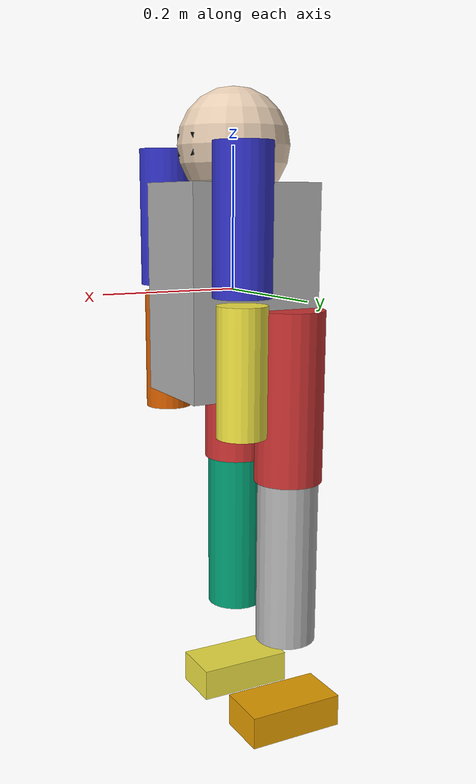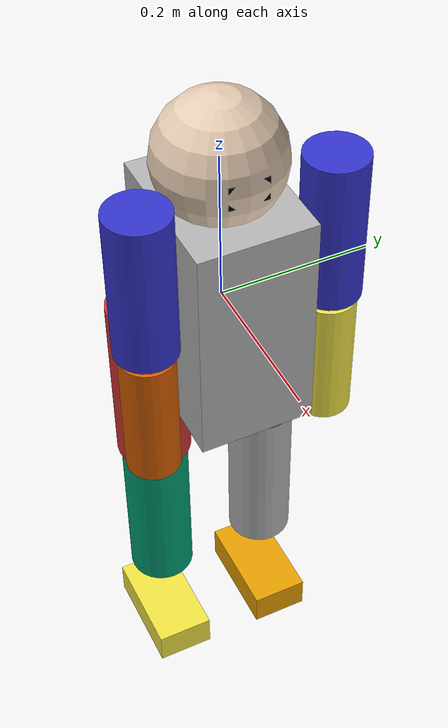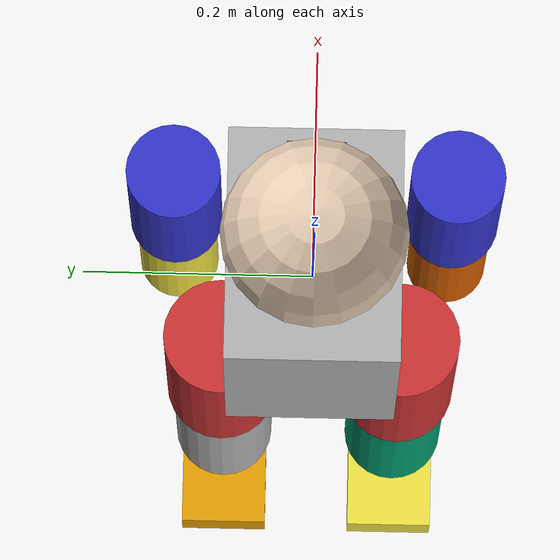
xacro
<?xml version="1.0"?>
<robot xmlns:xacro="http://www.ros.org/wiki/xacro" name="textbook_humanoid">
  <xacro:property name="M_PI" value="3.1415926535897931" />

  <!-- Base link (torso) -->
  <link name="base_link">
    <visual>
      <geometry>
        <box size="0.2 0.15 0.3"/>
      </geometry>
      <material name="light_gray">
        <color rgba="0.7 0.7 0.7 1.0"/>
      </material>
    </visual>
    <collision>
      <geometry>
        <box size="0.2 0.15 0.3"/>
      </geometry>
    </collision>
    <inertial>
      <mass value="10.0"/>
      <inertia ixx="0.2" ixy="0" ixz="0" iyy="0.3" iyz="0" izz="0.2"/>
    </inertial>
  </link>

  <!-- Head -->
  <joint name="neck_joint" type="revolute">
    <parent link="base_link"/>
    <child link="head_link"/>
    <origin xyz="0 0 0.2" rpy="0 0 0"/>
    <axis xyz="0 1 0"/>
    <limit lower="${-M_PI/3}" upper="${M_PI/3}" effort="5.0" velocity="2.0"/>
  </joint>

  <link name="head_link">
    <visual>
      <geometry>
        <sphere radius="0.08"/>
      </geometry>
      <material name="skin_color">
        <color rgba="0.9 0.8 0.7 1.0"/>
      </material>
    </visual>
    <collision>
      <geometry>
        <sphere radius="0.08"/>
      </geometry>
    </collision>
    <inertial>
      <mass value="2.0"/>
      <inertia ixx="0.01" ixy="0" ixz="0" iyy="0.01" iyz="0" izz="0.01"/>
    </inertial>
  </link>

  <!-- Left Arm -->
  <joint name="left_shoulder_joint" type="revolute">
    <parent link="base_link"/>
    <child link="left_upper_arm"/>
    <origin xyz="0.05 0.12 0.1" rpy="0 0 0"/>
    <axis xyz="0 1 0"/>
    <limit lower="${-M_PI/2}" upper="${M_PI/2}" effort="10.0" velocity="2.0"/>
  </joint>

  <link name="left_upper_arm">
    <visual>
      <geometry>
        <cylinder length="0.2" radius="0.04"/>
      </geometry>
      <material name="blue">
        <color rgba="0.2 0.2 0.8 1.0"/>
      </material>
    </visual>
    <collision>
      <geometry>
        <cylinder length="0.2" radius="0.04"/>
      </geometry>
    </collision>
    <inertial>
      <mass value="1.5"/>
      <inertia ixx="0.005" ixy="0" ixz="0" iyy="0.005" iyz="0" izz="0.0002"/>
    </inertial>
  </link>

  <joint name="left_elbow_joint" type="revolute">
    <parent link="left_upper_arm"/>
    <child link="left_lower_arm"/>
    <origin xyz="0 0 -0.2" rpy="0 0 0"/>
    <axis xyz="1 0 0"/>
    <limit lower="${-M_PI/2}" upper="${M_PI/2}" effort="8.0" velocity="2.0"/>
  </joint>

  <link name="left_lower_arm">
    <visual>
      <geometry>
        <cylinder length="0.18" radius="0.035"/>
      </geometry>
    </visual>
    <collision>
      <geometry>
        <cylinder length="0.18" radius="0.035"/>
      </geometry>
    </collision>
    <inertial>
      <mass value="1.0"/>
      <inertia ixx="0.003" ixy="0" ixz="0" iyy="0.003" iyz="0" izz="0.0001"/>
    </inertial>
  </link>

  <!-- Right Arm -->
  <joint name="right_shoulder_joint" type="revolute">
    <parent link="base_link"/>
    <child link="right_upper_arm"/>
    <origin xyz="0.05 -0.12 0.1" rpy="0 0 0"/>
    <axis xyz="0 1 0"/>
    <limit lower="${-M_PI/2}" upper="${M_PI/2}" effort="10.0" velocity="2.0"/>
  </joint>

  <link name="right_upper_arm">
    <visual>
      <geometry>
        <cylinder length="0.2" radius="0.04"/>
      </geometry>
      <material name="blue">
        <color rgba="0.2 0.2 0.8 1.0"/>
      </material>
    </visual>
    <collision>
      <geometry>
        <cylinder length="0.2" radius="0.04"/>
      </geometry>
    </collision>
    <inertial>
      <mass value="1.5"/>
      <inertia ixx="0.005" ixy="0" ixz="0" iyy="0.005" iyz="0" izz="0.0002"/>
    </inertial>
  </link>

  <joint name="right_elbow_joint" type="revolute">
    <parent link="right_upper_arm"/>
    <child link="right_lower_arm"/>
    <origin xyz="0 0 -0.2" rpy="0 0 0"/>
    <axis xyz="1 0 0"/>
    <limit lower="${-M_PI/2}" upper="${M_PI/2}" effort="8.0" velocity="2.0"/>
  </joint>

  <link name="right_lower_arm">
    <visual>
      <geometry>
        <cylinder length="0.18" radius="0.035"/>
      </geometry>
    </visual>
    <collision>
      <geometry>
        <cylinder length="0.18" radius="0.035"/>
      </geometry>
    </collision>
    <inertial>
      <mass value="1.0"/>
      <inertia ixx="0.003" ixy="0" ixz="0" iyy="0.003" iyz="0" izz="0.0001"/>
    </inertial>
  </link>

  <!-- Left Leg -->
  <joint name="left_hip_joint" type="revolute">
    <parent link="base_link"/>
    <child link="left_upper_leg"/>
    <origin xyz="-0.05 0.08 -0.15" rpy="0 0 0"/>
    <axis xyz="0 1 0"/>
    <limit lower="${-M_PI/3}" upper="${M_PI/3}" effort="15.0" velocity="1.5"/>
  </joint>

  <link name="left_upper_leg">
    <visual>
      <geometry>
        <cylinder length="0.25" radius="0.05"/>
      </geometry>
      <material name="red">
        <color rgba="0.8 0.2 0.2 1.0"/>
      </material>
    </visual>
    <collision>
      <geometry>
        <cylinder length="0.25" radius="0.05"/>
      </geometry>
    </collision>
    <inertial>
      <mass value="2.0"/>
      <inertia ixx="0.01" ixy="0" ixz="0" iyy="0.01" iyz="0" izz="0.0003"/>
    </inertial>
  </link>

  <joint name="left_knee_joint" type="revolute">
    <parent link="left_upper_leg"/>
    <child link="left_lower_leg"/>
    <origin xyz="0 0 -0.25" rpy="0 0 0"/>
    <axis xyz="1 0 0"/>
    <limit lower="0" upper="${M_PI/2}" effort="15.0" velocity="1.5"/>
  </joint>

  <link name="left_lower_leg">
    <visual>
      <geometry>
        <cylinder length="0.25" radius="0.045"/>
      </geometry>
    </visual>
    <collision>
      <geometry>
        <cylinder length="0.25" radius="0.045"/>
      </geometry>
    </collision>
    <inertial>
      <mass value="1.8"/>
      <inertia ixx="0.008" ixy="0" ixz="0" iyy="0.008" iyz="0" izz="0.0003"/>
    </inertial>
  </link>

  <joint name="left_ankle_joint" type="revolute">
    <parent link="left_lower_leg"/>
    <child link="left_foot"/>
    <origin xyz="0 0 -0.25" rpy="0 0 0"/>
    <axis xyz="0 1 0"/>
    <limit lower="${-M_PI/6}" upper="${M_PI/6}" effort="8.0" velocity="1.0"/>
  </joint>

  <link name="left_foot">
    <visual>
      <geometry>
        <box size="0.15 0.08 0.05"/>
      </geometry>
    </visual>
    <collision>
      <geometry>
        <box size="0.15 0.08 0.05"/>
      </geometry>
    </collision>
    <inertial>
      <mass value="0.8"/>
      <inertia ixx="0.001" ixy="0" ixz="0" iyy="0.002" iyz="0" izz="0.002"/>
    </inertial>
  </link>

  <!-- Right Leg -->
  <joint name="right_hip_joint" type="revolute">
    <parent link="base_link"/>
    <child link="right_upper_leg"/>
    <origin xyz="-0.05 -0.08 -0.15" rpy="0 0 0"/>
    <axis xyz="0 1 0"/>
    <limit lower="${-M_PI/3}" upper="${M_PI/3}" effort="15.0" velocity="1.5"/>
  </joint>

  <link name="right_upper_leg">
    <visual>
      <geometry>
        <cylinder length="0.25" radius="0.05"/>
      </geometry>
      <material name="red">
        <color rgba="0.8 0.2 0.2 1.0"/>
      </material>
    </visual>
    <collision>
      <geometry>
        <cylinder length="0.25" radius="0.05"/>
      </geometry>
    </collision>
    <inertial>
      <mass value="2.0"/>
      <inertia ixx="0.01" ixy="0" ixz="0" iyy="0.01" iyz="0" izz="0.0003"/>
    </inertial>
  </link>

  <joint name="right_knee_joint" type="revolute">
    <parent link="right_upper_leg"/>
    <child link="right_lower_leg"/>
    <origin xyz="0 0 -0.25" rpy="0 0 0"/>
    <axis xyz="1 0 0"/>
    <limit lower="0" upper="${M_PI/2}" effort="15.0" velocity="1.5"/>
  </joint>

  <link name="right_lower_leg">
    <visual>
      <geometry>
        <cylinder length="0.25" radius="0.045"/>
      </geometry>
    </visual>
    <collision>
      <geometry>
        <cylinder length="0.25" radius="0.045"/>
      </geometry>
    </collision>
    <inertial>
      <mass value="1.8"/>
      <inertia ixx="0.008" ixy="0" ixz="0" iyy="0.008" iyz="0" izz="0.0003"/>
    </inertial>
  </link>

  <joint name="right_ankle_joint" type="revolute">
    <parent link="right_lower_leg"/>
    <child link="right_foot"/>
    <origin xyz="0 0 -0.25" rpy="0 0 0"/>
    <axis xyz="0 1 0"/>
    <limit lower="${-M_PI/6}" upper="${M_PI/6}" effort="8.0" velocity="1.0"/>
  </joint>

  <link name="right_foot">
    <visual>
      <geometry>
        <box size="0.15 0.08 0.05"/>
      </geometry>
    </visual>
    <collision>
      <geometry>
        <box size="0.15 0.08 0.05"/>
      </geometry>
    </collision>
    <inertial>
      <mass value="0.8"/>
      <inertia ixx="0.001" ixy="0" ixz="0" iyy="0.002" iyz="0" izz="0.002"/>
    </inertial>
  </link>

  <!-- Sensors -->
  <joint name="camera_joint" type="fixed">
    <parent link="head_link"/>
    <child link="camera_link"/>
    <origin xyz="0.05 0 0" rpy="0 0 0"/>
  </joint>

  <link name="camera_link">
    <visual>
      <geometry>
        <box size="0.05 0.05 0.03"/>
      </geometry>
      <material name="black">
        <color rgba="0 0 0 1"/>
      </material>
    </visual>
  </link>

  <joint name="imu_joint" type="fixed">
    <parent link="base_link"/>
    <child link="imu_link"/>
    <origin xyz="0 0 0.1" rpy="0 0 0"/>
  </joint>

  <link name="imu_link"/>

  <!-- Gazebo plugins -->
  <gazebo reference="base_link">
    <material>Gazebo/Grey</material>
  </gazebo>

  <gazebo reference="head_link">
    <material>Gazebo/Pink</material>
  </gazebo>

  <gazebo>
    <plugin name="imu_sensor" filename="libgazebo_ros_imu.so">
      <ros>
        <namespace>imu</namespace>
        <remapping>~/out:=imu/data</remapping>
      </ros>
      <initial_orientation_as_reference>false</initial_orientation_as_reference>
    </plugin>
  </gazebo>

  <gazebo reference="camera_link">
    <sensor type="camera" name="camera1">
      <visualize>true</visualize>
      <update_rate>30.0</update_rate>
      <camera name="head_camera">
        <horizontal_fov>1.3962634</horizontal_fov>
        <image>
          <width>800</width>
          <height>600</height>
          <format>R8G8B8</format>
        </image>
        <clip>
          <near>0.02</near>
          <far>300</far>
        </clip>
      </camera>
      <plugin name="camera_controller" filename="libgazebo_ros_camera.so">
        <ros>
          <namespace>camera</namespace>
          <remapping>image_raw:=image</remapping>
          <remapping>camera_info:=camera_info</remapping>
        </ros>
        <camera_name>head_camera</camera_name>
        <hack_baseline>0.07</hack_baseline>
        <distortion_k1>0.0</distortion_k1>
        <distortion_k2>0.0</distortion_k2>
        <distortion_k3>0.0</distortion_k3>
        <distortion_t1>0.0</distortion_t1>
        <distortion_t2>0.0</distortion_t2>
      </plugin>
    </sensor>
  </gazebo>
</robot>
